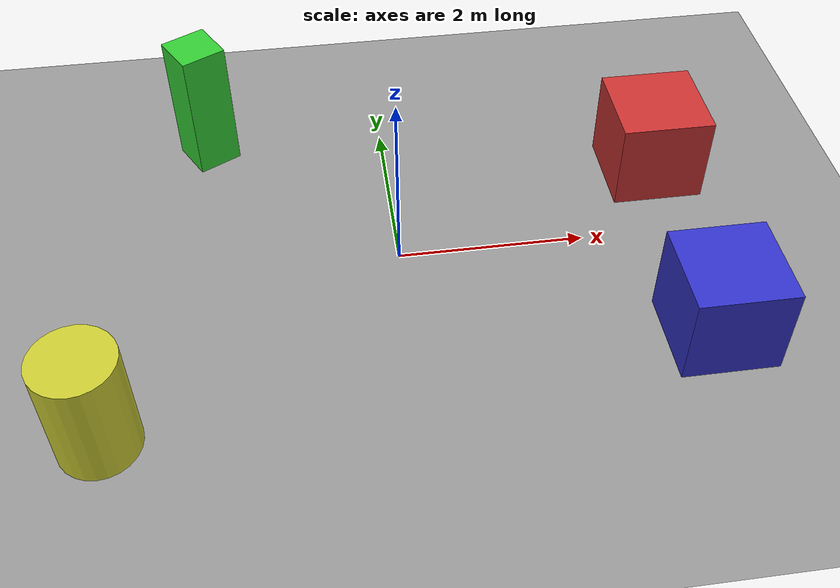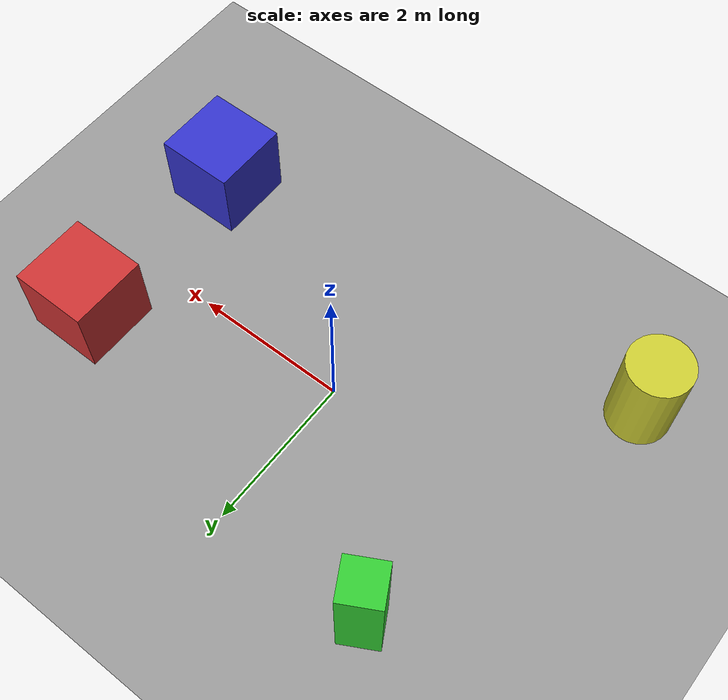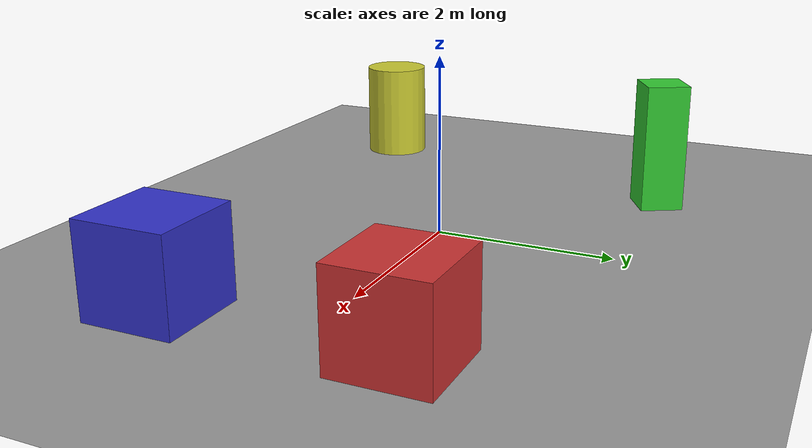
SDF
<?xml version="1.0" ?>
<sdf version="1.9">
  <world name="robot_demo">
    <physics name="1ms" type="ignored">
      <max_step_size>0.001</max_step_size>
      <real_time_factor>1.0</real_time_factor>
    </physics>

    <plugin
      filename="gz-sim-physics-system"
      name="gz::sim::systems::Physics" />
    <plugin
      filename="gz-sim-user-commands-system"
      name="gz::sim::systems::UserCommands" />
    <plugin
      filename="gz-sim-scene-broadcaster-system"
      name="gz::sim::systems::SceneBroadcaster" />

    <plugin
      filename="gz-sim-sensors-system"
      name="gz::sim::systems::Sensors">
      <render_engine>ogre2</render_engine>
    </plugin>

    <plugin name="rmagine_optix_map_system" filename="librmagine_optix_map_system.so">
      <ignore_model>robot</ignore_model>
      <update>
        <rate_limit>100</rate_limit>
        <delta_trans>0.001</delta_trans>
        <delta_rot>0.001</delta_rot>
      </update>
    </plugin>

    <plugin name="rmagine_optix_sensor_system" filename="librmagine_optix_sensor_system.so"/>

    <light name="sun" type="directional">
      <cast_shadows>true</cast_shadows>
      <pose>0 0 10 0 0 0</pose>
      <diffuse>0.8 0.8 0.8 1</diffuse>
      <specular>0.2 0.2 0.2 1</specular>
      <direction>-0.5 0.1 -0.9</direction>
    </light>

    <model name="ground_plane">
      <static>true</static>
      <link name="link">
        <collision name="collision">
          <geometry>
            <plane>
              <size>20 20</size>
            </plane>
          </geometry>
        </collision>
        <visual name="visual">
          <geometry>
            <plane>
              <size>20 20</size>
            </plane>
          </geometry>
          <material>
            <ambient>0.6 0.6 0.6 1</ambient>
            <diffuse>0.6 0.6 0.6 1</diffuse>
          </material>
        </visual>
      </link>
    </model>

    <model name="box_1">
      <static>false</static>
      <pose>3 1 0.5 0 0 0</pose>
      <link name="link">
        <inertial>
          <mass>5.0</mass>
          <inertia><ixx>0.8333</ixx><iyy>0.8333</iyy><izz>0.8333</izz></inertia>
        </inertial>
        <collision name="collision">
          <geometry><box><size>1 1 1</size></box></geometry>
        </collision>
        <visual name="visual">
          <geometry><box><size>1 1 1</size></box></geometry>
          <material><ambient>0.8 0.2 0.2 1</ambient><diffuse>0.8 0.2 0.2 1</diffuse></material>
        </visual>
      </link>
    </model>

    <model name="box_2">
      <static>false</static>
      <pose>3 -1.5 0.5 0 0 0</pose>
      <link name="link">
        <inertial>
          <mass>5.0</mass>
          <inertia><ixx>0.8333</ixx><iyy>0.8333</iyy><izz>0.8333</izz></inertia>
        </inertial>
        <collision name="collision">
          <geometry><box><size>1 1 1</size></box></geometry>
        </collision>
        <visual name="visual">
          <geometry><box><size>1 1 1</size></box></geometry>
          <material><ambient>0.2 0.2 0.8 1</ambient><diffuse>0.2 0.2 0.8 1</diffuse></material>
        </visual>
      </link>
    </model>

    <model name="box_3">
      <static>false</static>
      <pose>-2 2 0.75 0 0 0.5</pose>
      <link name="link">
        <inertial>
          <mass>3.0</mass>
          <inertia><ixx>0.625</ixx><iyy>0.625</iyy><izz>0.125</izz></inertia>
        </inertial>
        <collision name="collision">
          <geometry><box><size>0.5 0.5 1.5</size></box></geometry>
        </collision>
        <visual name="visual">
          <geometry><box><size>0.5 0.5 1.5</size></box></geometry>
          <material><ambient>0.2 0.8 0.2 1</ambient><diffuse>0.2 0.8 0.2 1</diffuse></material>
        </visual>
      </link>
    </model>

    <model name="cylinder_1">
      <static>false</static>
      <pose>-3 -2 0.6 0 0 0</pose>
      <link name="link">
        <inertial>
          <mass>4.0</mass>
          <inertia><ixx>0.64</ixx><iyy>0.64</iyy><izz>0.32</izz></inertia>
        </inertial>
        <collision name="collision">
          <geometry><cylinder><radius>0.4</radius><length>1.2</length></cylinder></geometry>
        </collision>
        <visual name="visual">
          <geometry><cylinder><radius>0.4</radius><length>1.2</length></cylinder></geometry>
          <material><ambient>0.8 0.8 0.2 1</ambient><diffuse>0.8 0.8 0.2 1</diffuse></material>
        </visual>
      </link>
    </model>

  </world>
</sdf>
